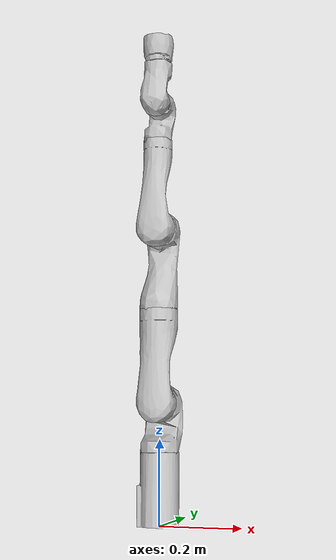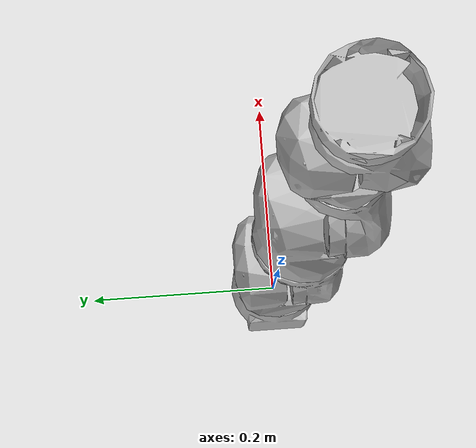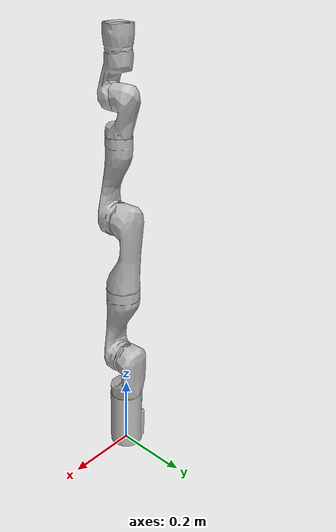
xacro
<?xml version="1.0"?>
<robot name="gen3" xmlns:xacro="http://ros.org/wiki/xacro">
    <xacro:include filename="$(find kinova_task_space_controller)/urdf/gen3.urdf.xacro" />
    <xacro:load_arm parent="" dof="7" vision="false" prefix="">
        <origin xyz="0 0 0" rpy="0 0 0"/>
    </xacro:load_arm>
</robot>

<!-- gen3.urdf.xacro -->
<robot name="gen3_arm" xmlns:xacro="http://ros.org/wiki/xacro">

    <!-- Propagate last link name information because it is the gripper's parent link -->
    <xacro:property name="last_arm_link" value="end_effector_link"/>

    <xacro:macro name="load_arm" params="parent:='' dof vision prefix *origin">
        <link name="${prefix}base_link">
            <visual>
                <origin xyz="0 0 0" rpy="0 0 0" />
                <geometry>
                    <mesh filename="package://kortex_description/arms/gen3/${dof}dof/meshes/base_link.STL" />
                </geometry>
                <material name="">
                    <color rgba="0.75294 0.75294 0.75294 1" />
                </material>
            </visual>
            <collision>
                <origin xyz="0 0 0" rpy="0 0 0" />
                <geometry>
                    <mesh filename="package://kortex_description/arms/gen3/${dof}dof/meshes/base_link.STL" />
                </geometry>
            </collision>
        </link>

        <link name="${prefix}base_link_dummy">
            <inertial>
                <origin rpy="0 0 0" xyz="-0.000648 -0.000166 0.084487"/>
                <mass value="1.697"/>
                <inertia ixx="0.004622" ixy="9E-06" ixz="6E-05" iyy="0.004495" iyz="9E-06" izz="0.002079"/>
            </inertial>
        </link>

        <joint name="${prefix}base_dummy_joint" type="fixed">
            <origin rpy="0.0 0.0 0.0" xyz="0 0 0"/>
            <parent link="${prefix}base_link"/>
            <child link="${prefix}base_link_dummy"/>
        </joint>

        <link name="${prefix}shoulder_link">
            <inertial>
                <origin xyz="-2.3E-05 -0.010364 -0.07336" rpy="0 0 0" />
                <mass value="1.3773" />
                <inertia ixx="0.00457" ixy="1E-06" ixz="2E-06" iyy="0.004831" iyz="0.000448" izz="0.001409" />
            </inertial>
            <visual>
                <origin xyz="0 0 0" rpy="0 0 0" />
                <geometry>
                    <mesh filename="package://kortex_description/arms/gen3/${dof}dof/meshes/shoulder_link.STL" />
                </geometry>
                <material name="">
                    <color rgba="0.75294 0.75294 0.75294 1" />
                </material>
            </visual>
            <collision>
                <origin xyz="0 0 0" rpy="0 0 0" />
                <geometry>
                    <mesh filename="package://kortex_description/arms/gen3/${dof}dof/meshes/shoulder_link.STL" />
                </geometry>
            </collision>
        </link>
        <joint
                name="${prefix}joint_1"
                type="continuous">
            <origin xyz="0 0 0.15643" rpy="3.1416 2.7629E-18 -4.9305E-36" />
            <parent
                    link="${prefix}base_link" />
            <child
                    link="${prefix}shoulder_link" />
            <axis
                    xyz="0 0 1" />
            <limit
                    effort="39"
                    velocity="1.3963" />
        </joint>
        <link name="${prefix}half_arm_1_link">
            <inertial>
                <origin xyz="-4.4E-05 -0.09958 -0.013278" rpy="0 0 0" />
                <mass value="1.1636" />
                <inertia ixx="0.011088" ixy="5E-06" ixz="0" iyy="0.001072" iyz="-0.000691" izz="0.011255" />
            </inertial>
            <visual>
                <origin xyz="0 0 0" rpy="0 0 0" />
                <geometry>
                    <mesh filename="package://kortex_description/arms/gen3/${dof}dof/meshes/half_arm_1_link.STL" />
                </geometry>
                <material name="">
                    <color rgba="0.75294 0.75294 0.75294 1" />
                </material>
            </visual>
            <collision>
                <origin xyz="0 0 0" rpy="0 0 0" />
                <geometry>
                    <mesh filename="package://kortex_description/arms/gen3/${dof}dof/meshes/half_arm_1_link.STL" />
                </geometry>
            </collision>
        </link>
        <joint
                name="${prefix}joint_2"
                type="revolute">
            <origin xyz="0 0.005375 -0.12838" rpy="1.5708 2.1343E-17 -1.1102E-16" />
            <parent
                    link="${prefix}shoulder_link" />
            <child
                    link="${prefix}half_arm_1_link" />
            <axis
                    xyz="0 0 1" />
            <limit lower="-2.41" upper="2.41" effort="39" velocity="1.3963" />
        </joint>
        <link name="${prefix}half_arm_2_link">
            <inertial>
                <origin xyz="-4.4E-05 -0.006641 -0.117892" rpy="0 0 0" />
                <mass value="1.1636" />
                <inertia ixx="0.010932" ixy="0" ixz="-7E-06" iyy="0.011127" iyz="0.000606" izz="0.001043" />
            </inertial>
            <visual>
                <origin xyz="0 0 0" rpy="0 0 0" />
                <geometry>
                    <mesh filename="package://kortex_description/arms/gen3/${dof}dof/meshes/half_arm_2_link.STL" />
                </geometry>
                <material name="">
                    <color rgba="0.75294 0.75294 0.75294 1" />
                </material>
            </visual>
            <collision>
                <origin xyz="0 0 0" rpy="0 0 0" />
                <geometry>
                    <mesh filename="package://kortex_description/arms/gen3/${dof}dof/meshes/half_arm_2_link.STL" />
                </geometry>
            </collision>
        </link>
        <joint
                name="${prefix}joint_3"
                type="continuous">
            <origin xyz="0 -0.21038 -0.006375" rpy="-1.5708 1.2326E-32 -2.9122E-16" />
            <parent
                    link="${prefix}half_arm_1_link" />
            <child
                    link="${prefix}half_arm_2_link" />
            <axis
                    xyz="0 0 1" />
            <limit
                    effort="39"
                    velocity="1.3963" />
        </joint>
        <link name="${prefix}forearm_link">
            <inertial>
                <origin xyz="-1.8E-05 -0.075478 -0.015006" rpy="0 0 0" />
                <mass value="0.9302" />
                <inertia ixx="0.008147" ixy="-1E-06" ixz="0" iyy="0.000631" iyz="-0.0005" izz="0.008316" />
            </inertial>
            <visual>
                <origin xyz="0 0 0" rpy="0 0 0" />
                <geometry>
                    <mesh filename="package://kortex_description/arms/gen3/${dof}dof/meshes/forearm_link.STL" />
                </geometry>
                <material name="">
                    <color rgba="0.75294 0.75294 0.75294 1" />
                </material>
            </visual>
            <collision>
                <origin xyz="0 0 0" rpy="0 0 0" />
                <geometry>
                    <mesh filename="package://kortex_description/arms/gen3/${dof}dof/meshes/forearm_link.STL" />
                </geometry>
            </collision>
        </link>
        <joint
                name="${prefix}joint_4"
                type="revolute">
            <origin xyz="0 0.006375 -0.21038" rpy="1.5708 -6.6954E-17 -1.6653E-16" />
            <parent
                    link="${prefix}half_arm_2_link" />
            <child
                    link="${prefix}forearm_link" />
            <axis
                    xyz="0 0 1" />
            <limit lower="-2.66" upper="2.66" effort="39" velocity="1.3963" />
        </joint>
        <link name="${prefix}spherical_wrist_1_link">
            <inertial>
                <origin xyz="1E-06 -0.009432 -0.063883" rpy="0 0 0" />
                <mass value="0.6781" />
                <inertia ixx="0.001596" ixy="0" ixz="0" iyy="0.001607" iyz="0.000256" izz="0.000399" />
            </inertial>
            <visual>
                <origin xyz="0 0 0" rpy="0 0 0" />
                <geometry>
                    <mesh filename="package://kortex_description/arms/gen3/${dof}dof/meshes/spherical_wrist_1_link.STL" />
                </geometry>
                <material name="">
                    <color rgba="0.75294 0.75294 0.75294 1" />
                </material>
            </visual>
            <collision>
                <origin xyz="0 0 0" rpy="0 0 0" />
                <geometry>
                    <mesh filename="package://kortex_description/arms/gen3/${dof}dof/meshes/spherical_wrist_1_link.STL" />
                </geometry>
            </collision>
        </link>
        <joint
                name="${prefix}joint_5"
                type="continuous">
            <origin xyz="0 -0.20843 -0.006375" rpy="-1.5708 2.2204E-16 -6.373E-17" />
            <parent
                    link="${prefix}forearm_link" />
            <child
                    link="${prefix}spherical_wrist_1_link" />
            <axis
                    xyz="0 0 1" />
            <limit
                    effort="9"
                    velocity="1.2218" />
        </joint>
        <link name="${prefix}spherical_wrist_2_link">
            <inertial>
                <origin xyz="1E-06 -0.045483 -0.00965" rpy="0 0 0" />
                <mass value="0.6781" />
                <inertia ixx="0.001641" ixy="0" ixz="0" iyy="0.00041" iyz="-0.000278" izz="0.001641" />
            </inertial>
            <visual>
                <origin xyz="0 0 0" rpy="0 0 0" />
                <geometry>
                    <mesh filename="package://kortex_description/arms/gen3/${dof}dof/meshes/spherical_wrist_2_link.STL" />
                </geometry>
                <material name="">
                    <color rgba="0.75294 0.75294 0.75294 1" />
                </material>
            </visual>
            <collision>
                <origin xyz="0 0 0" rpy="0 0 0" />
                <geometry>
                    <mesh filename="package://kortex_description/arms/gen3/${dof}dof/meshes/spherical_wrist_2_link.STL" />
                </geometry>
            </collision>
        </link>
        <joint
                name="${prefix}joint_6"
                type="revolute">
            <origin xyz="0 0.00017505 -0.10593" rpy="1.5708 9.2076E-28 -8.2157E-15" />
            <parent
                    link="${prefix}spherical_wrist_1_link" />
            <child
                    link="${prefix}spherical_wrist_2_link" />
            <axis
                    xyz="0 0 1" />
            <limit lower="-2.23" upper="2.23" effort="9" velocity="1.2218" />
        </joint>
        <xacro:if value="${vision}">
            <link name="${prefix}bracelet_link">
                <inertial>
                    <origin xyz="0.000281 0.011402 -0.029798" rpy="0 0 0" />
                    <mass value="0.5" />
                    <inertia ixx="0.000587" ixy="3E-06" ixz="3E-06" iyy="0.000369" iyz="-0.000118" izz="0.000609" />
                </inertial>
                <visual>
                    <origin xyz="0 0 0" rpy="0 0 0" />
                    <geometry>
                        <mesh filename="package://kortex_description/arms/gen3/${dof}dof/meshes/bracelet_with_vision_link.STL" />
                    </geometry>
                    <material name="">
                        <color rgba="0.75294 0.75294 0.75294 1" />
                    </material>
                </visual>
                <collision>
                    <origin xyz="0 0 0" rpy="0 0 0" />
                    <geometry>
                        <mesh filename="package://kortex_description/arms/gen3/${dof}dof/meshes/bracelet_with_vision_link.STL" />
                    </geometry>
                </collision>
            </link>
        </xacro:if>
        <xacro:unless value="${vision}">
            <link name="${prefix}bracelet_link">
                <inertial>
                    <origin xyz="-9.3E-05 0.000132 -0.022905" rpy="0 0 0" />
                    <mass value="0.364" />
                    <inertia ixx="0.000214" ixy="0" ixz="1E-06" iyy="0.000223" iyz="-2E-06" izz="0.00024" />
                </inertial>
                <visual>
                    <origin xyz="0 0 0" rpy="0 0 0" />
                    <geometry>
                        <mesh filename="package://kortex_description/arms/gen3/${dof}dof/meshes/bracelet_no_vision_link.STL" />
                    </geometry>
                    <material name="">
                        <color rgba="0.75294 0.75294 0.75294 1" />
                    </material>
                </visual>
                <collision>
                    <origin xyz="0 0 0" rpy="0 0 0" />
                    <geometry>
                        <mesh filename="package://kortex_description/arms/gen3/${dof}dof/meshes/bracelet_no_vision_link.STL" />
                    </geometry>
                </collision>
            </link>
        </xacro:unless>
        <joint
                name="${prefix}joint_7"
                type="continuous">
            <origin xyz="0 -0.10593 -0.00017505" rpy="-1.5708 -5.5511E-17 9.6396E-17" />
            <parent
                    link="${prefix}spherical_wrist_2_link" />
            <child
                    link="${prefix}bracelet_link" />
            <axis
                    xyz="0 0 1" />
            <limit
                    effort="9"
                    velocity="1.2218" />
        </joint>
        <link name="${prefix}end_effector_link" />
        <joint
                name="${prefix}end_effector"
                type="fixed">
            <origin xyz="0 0 -0.0615250000000001" rpy="3.14159265358979 1.09937075168372E-32 0" />
            <parent
                    link="${prefix}bracelet_link" />
            <child
                    link="${prefix}end_effector_link" />
            <axis
                    xyz="0 0 0" />
        </joint>
        <xacro:if value="${vision}">
            <link name="${prefix}camera_link" />
            <joint name="${prefix}camera_module" type="fixed">
                <origin xyz="0 0.05639 -0.00305" rpy="3.14159265358979 3.14159265358979 0" />
                <parent link="${prefix}end_effector_link" />
                <child  link="${prefix}camera_link" />
            </joint>
            <link name="${prefix}camera_depth_frame" />
            <joint name="${prefix}depth_module" type="fixed">
                <origin xyz="0.0275 0.066 -0.00305" rpy="3.14159265358979 3.14159265358979 0" />
                <parent link="${prefix}end_effector_link" />
                <child  link="${prefix}camera_depth_frame" />
            </joint>
            <link name="${prefix}camera_color_frame" />
            <joint name="${prefix}color_module" type="fixed">
                <origin xyz="0 0.05639 -0.00305" rpy="3.14159265358979 3.14159265358979 0" />
                <parent link="${prefix}end_effector_link" />
                <child  link="${prefix}camera_color_frame" />
            </joint>
        </xacro:if>
    </xacro:macro>
</robot>
